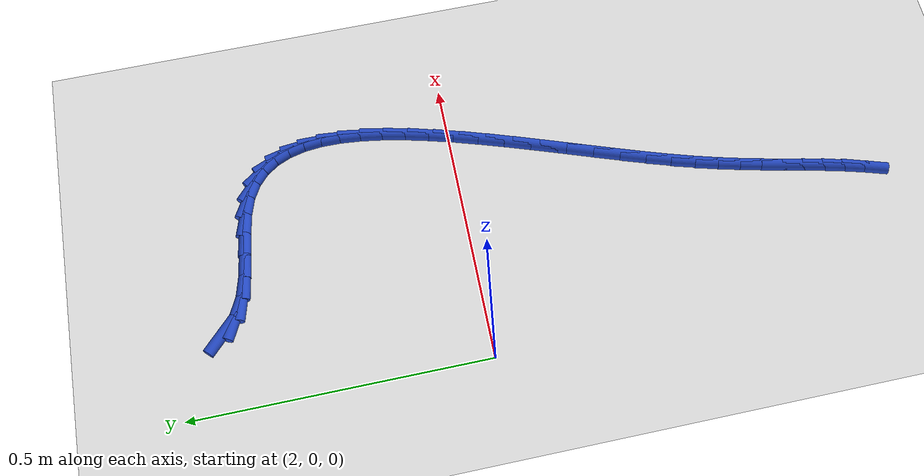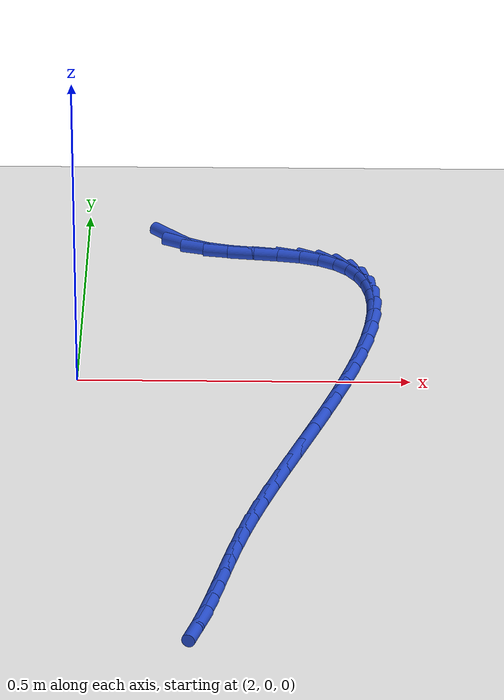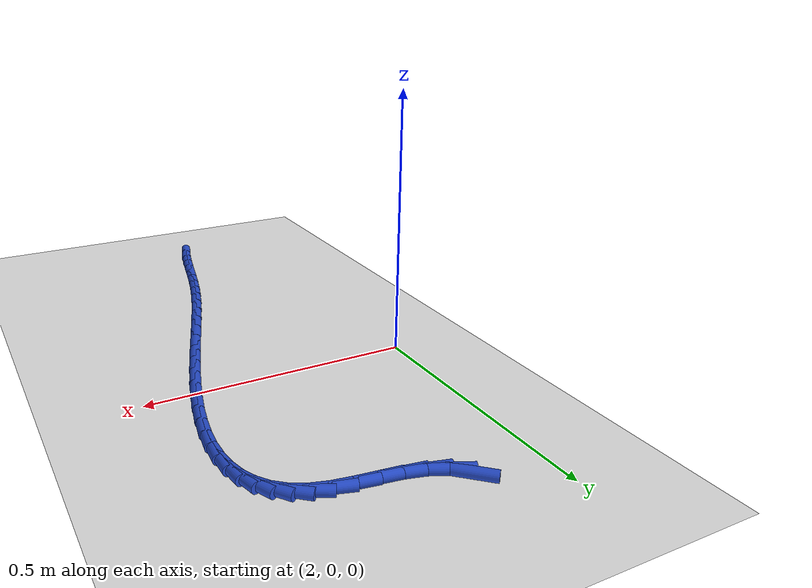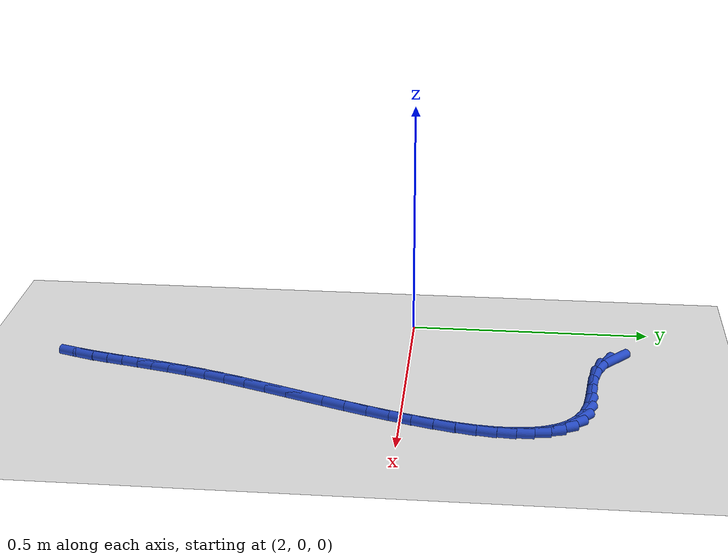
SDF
<sdf version="1.6">
 <world name="default">
  <model name="ground_plane">
   <static>1</static>
   <link name="link">
    <collision name="collision">
     <geometry><plane><normal>0 0 1</normal><size>100 100</size></plane></geometry>
     <surface><friction><ode><mu>100</mu><mu2>50</mu2></ode></friction></surface>
    </collision>
    <visual name="visual">
     <cast_shadows>0</cast_shadows>
     <geometry><plane><normal>0 0 1</normal><size>100 100</size></plane></geometry>
     <material>
      <script><uri>file://media/materials/scripts/gazebo.material</uri><name>Gazebo/WhiteGlow</name></script>
     </material>
    </visual>
   </link>
  </model>
  <model name="line">
   <link name="link_90">
    <pose>2.1305636055620076 0.42288128107191014 0.01 0 1.57 -0.7567599233735361</pose>
    <collision name="collision">
     <geometry><cylinder><radius>0.01</radius><length>0.08</length></cylinder></geometry>
    </collision>
    <visual name="visual">
     <material>
      <script><name>Gazebo/Blue</name><uri>file://media/materials/scripts/gazebo.material</uri></script>
     </material>
     <geometry><cylinder><radius>0.01</radius><length>0.08</length></cylinder></geometry>
    </visual>
   </link>
   <link name="link_91">
    <pose>2.1542394479452 0.4005241038728059 0.01 0 1.57 -0.4426309344426976</pose>
    <collision name="collision">
     <geometry><cylinder><radius>0.01</radius><length>0.08</length></cylinder></geometry>
    </collision>
    <visual name="visual">
     <material>
      <script><name>Gazebo/Blue</name><uri>file://media/materials/scripts/gazebo.material</uri></script>
     </material>
     <geometry><cylinder><radius>0.01</radius><length>0.08</length></cylinder></geometry>
    </visual>
   </link>
   <link name="link_92">
    <pose>2.184852789411084 0.38601342409188905 0.01 0 1.57 -0.24406776833048593</pose>
    <collision name="collision">
     <geometry><cylinder><radius>0.01</radius><length>0.08</length></cylinder></geometry>
    </collision>
    <visual name="visual">
     <material>
      <script><name>Gazebo/Blue</name><uri>file://media/materials/scripts/gazebo.material</uri></script>
     </material>
     <geometry><cylinder><radius>0.01</radius><length>0.08</length></cylinder></geometry>
    </visual>
   </link>
   <link name="link_93">
    <pose>2.2202088412823087 0.37720862183935344 0.01 0 1.57 -0.14280089788089562</pose>
    <collision name="collision">
     <geometry><cylinder><radius>0.01</radius><length>0.08</length></cylinder></geometry>
    </collision>
    <visual name="visual">
     <material>
      <script><name>Gazebo/Blue</name><uri>file://media/materials/scripts/gazebo.material</uri></script>
     </material>
     <geometry><cylinder><radius>0.01</radius><length>0.08</length></cylinder></geometry>
    </visual>
   </link>
   <link name="link_94">
    <pose>2.257936519876932 0.3717841531406344 0.01 0 1.57 -0.11530615651037719</pose>
    <collision name="collision">
     <geometry><cylinder><radius>0.01</radius><length>0.08</length></cylinder></geometry>
    </collision>
    <visual name="visual">
     <material>
      <script><name>Gazebo/Blue</name><uri>file://media/materials/scripts/gazebo.material</uri></script>
     </material>
     <geometry><cylinder><radius>0.01</radius><length>0.08</length></cylinder></geometry>
    </visual>
   </link>
   <link name="link_95">
    <pose>2.2956647415130105 0.36741447402116684 0.01 0 1.57 -0.15819206931085225</pose>
    <collision name="collision">
     <geometry><cylinder><radius>0.01</radius><length>0.08</length></cylinder></geometry>
    </collision>
    <visual name="visual">
     <material>
      <script><name>Gazebo/Blue</name><uri>file://media/materials/scripts/gazebo.material</uri></script>
     </material>
     <geometry><cylinder><radius>0.01</radius><length>0.08</length></cylinder></geometry>
    </visual>
   </link>
   <link name="link_96">
    <pose>2.3310224225085987 0.361774040506386 0.01 0 1.57 -0.28894721813249935</pose>
    <collision name="collision">
     <geometry><cylinder><radius>0.01</radius><length>0.08</length></cylinder></geometry>
    </collision>
    <visual name="visual">
     <material>
      <script><name>Gazebo/Blue</name><uri>file://media/materials/scripts/gazebo.material</uri></script>
     </material>
     <geometry><cylinder><radius>0.01</radius><length>0.08</length></cylinder></geometry>
    </visual>
   </link>
   <link name="link_97">
    <pose>2.361746143969743 0.3526409038600702 0.01 0 1.57 -0.48733417918766403</pose>
    <collision name="collision">
     <geometry><cylinder><radius>0.01</radius><length>0.08</length></cylinder></geometry>
    </collision>
    <visual name="visual">
     <material>
      <script><name>Gazebo/Blue</name><uri>file://media/materials/scripts/gazebo.material</uri></script>
     </material>
     <geometry><cylinder><radius>0.01</radius><length>0.08</length></cylinder></geometry>
    </visual>
   </link>
   <link name="link_98">
    <pose>2.3870606356461144 0.339225014449768 0.01 0 1.57 -0.7119260344662285</pose>
    <collision name="collision">
     <geometry><cylinder><radius>0.01</radius><length>0.08</length></cylinder></geometry>
    </collision>
    <visual name="visual">
     <material>
      <script><name>Gazebo/Blue</name><uri>file://media/materials/scripts/gazebo.material</uri></script>
     </material>
     <geometry><cylinder><radius>0.01</radius><length>0.08</length></cylinder></geometry>
    </visual>
   </link>
   <link name="link_99">
    <pose>2.4072764636870216 0.32178111623548 0.01 0 1.57 -0.9407965432231287</pose>
    <collision name="collision">
     <geometry><cylinder><radius>0.01</radius><length>0.08</length></cylinder></geometry>
    </collision>
    <visual name="visual">
     <material>
      <script><name>Gazebo/Blue</name><uri>file://media/materials/scripts/gazebo.material</uri></script>
     </material>
     <geometry><cylinder><radius>0.01</radius><length>0.08</length></cylinder></geometry>
    </visual>
   </link>
   <link name="link_100">
    <pose>2.42272888254655 0.30058770830518927 0.01 0 1.57 -1.150464703091256</pose>
    <collision name="collision">
     <geometry><cylinder><radius>0.01</radius><length>0.08</length></cylinder></geometry>
    </collision>
    <visual name="visual">
     <material>
      <script><name>Gazebo/Blue</name><uri>file://media/materials/scripts/gazebo.material</uri></script>
     </material>
     <geometry><cylinder><radius>0.01</radius><length>0.08</length></cylinder></geometry>
    </visual>
   </link>
   <link name="link_101">
    <pose>2.433753146678786 0.2759232897468798 0.01 0 1.57 -1.3269284749671724</pose>
    <collision name="collision">
     <geometry><cylinder><radius>0.01</radius><length>0.08</length></cylinder></geometry>
    </collision>
    <visual name="visual">
     <material>
      <script><name>Gazebo/Blue</name><uri>file://media/materials/scripts/gazebo.material</uri></script>
     </material>
     <geometry><cylinder><radius>0.01</radius><length>0.08</length></cylinder></geometry>
    </visual>
   </link>
   <link name="link_102">
    <pose>2.4406845105378174 0.24806635964853438 0.01 0 1.57 -1.4680196423709888</pose>
    <collision name="collision">
     <geometry><cylinder><radius>0.01</radius><length>0.08</length></cylinder></geometry>
    </collision>
    <visual name="visual">
     <material>
      <script><name>Gazebo/Blue</name><uri>file://media/materials/scripts/gazebo.material</uri></script>
     </material>
     <geometry><cylinder><radius>0.01</radius><length>0.08</length></cylinder></geometry>
    </visual>
   </link>
   <link name="link_103">
    <pose>2.44385822857773 0.21729541709813743 0.01 0 1.57 1.5633525939783555</pose>
    <collision name="collision">
     <geometry><cylinder><radius>0.01</radius><length>0.08</length></cylinder></geometry>
    </collision>
    <visual name="visual">
     <material>
      <script><name>Gazebo/Blue</name><uri>file://media/materials/scripts/gazebo.material</uri></script>
     </material>
     <geometry><cylinder><radius>0.01</radius><length>0.08</length></cylinder></geometry>
    </visual>
   </link>
   <link name="link_104">
    <pose>2.443609555252612 0.1838889611836716 0.01 0 1.57 1.4777911887668989</pose>
    <collision name="collision">
     <geometry><cylinder><radius>0.01</radius><length>0.08</length></cylinder></geometry>
    </collision>
    <visual name="visual">
     <material>
      <script><name>Gazebo/Blue</name><uri>file://media/materials/scripts/gazebo.material</uri></script>
     </material>
     <geometry><cylinder><radius>0.01</radius><length>0.08</length></cylinder></geometry>
    </visual>
   </link>
   <link name="link_105">
    <pose>2.4402737450165493 0.14812549099312133 0.01 0 1.57 1.4112915435183782</pose>
    <collision name="collision">
     <geometry><cylinder><radius>0.01</radius><length>0.08</length></cylinder></geometry>
    </collision>
    <visual name="visual">
     <material>
      <script><name>Gazebo/Blue</name><uri>file://media/materials/scripts/gazebo.material</uri></script>
     </material>
     <geometry><cylinder><radius>0.01</radius><length>0.08</length></cylinder></geometry>
    </visual>
   </link>
   <link name="link_106">
    <pose>2.434186052323628 0.1102835056144692 0.01 0 1.57 1.3594713224725974</pose>
    <collision name="collision">
     <geometry><cylinder><radius>0.01</radius><length>0.08</length></cylinder></geometry>
    </collision>
    <visual name="visual">
     <material>
      <script><name>Gazebo/Blue</name><uri>file://media/materials/scripts/gazebo.material</uri></script>
     </material>
     <geometry><cylinder><radius>0.01</radius><length>0.08</length></cylinder></geometry>
    </visual>
   </link>
   <link name="link_107">
    <pose>2.425681731627936 0.07064150413569968 0.01 0 1.57 1.3190883652998113</pose>
    <collision name="collision">
     <geometry><cylinder><radius>0.01</radius><length>0.08</length></cylinder></geometry>
    </collision>
    <visual name="visual">
     <material>
      <script><name>Gazebo/Blue</name><uri>file://media/materials/scripts/gazebo.material</uri></script>
     </material>
     <geometry><cylinder><radius>0.01</radius><length>0.08</length></cylinder></geometry>
    </visual>
   </link>
   <link name="link_108">
    <pose>2.415096037383559 0.029477985644795292 0.01 0 1.57 1.287801285523651</pose>
    <collision name="collision">
     <geometry><cylinder><radius>0.01</radius><length>0.08</length></cylinder></geometry>
    </collision>
    <visual name="visual">
     <material>
      <script><name>Gazebo/Blue</name><uri>file://media/materials/scripts/gazebo.material</uri></script>
     </material>
     <geometry><cylinder><radius>0.01</radius><length>0.08</length></cylinder></geometry>
    </visual>
   </link>
   <link name="link_109">
    <pose>2.4027642240445855 -0.012928550770259326 0.01 0 1.57 1.2639416761813658</pose>
    <collision name="collision">
     <geometry><cylinder><radius>0.01</radius><length>0.08</length></cylinder></geometry>
    </collision>
    <visual name="visual">
     <material>
      <script><name>Gazebo/Blue</name><uri>file://media/materials/scripts/gazebo.material</uri></script>
     </material>
     <geometry><cylinder><radius>0.01</radius><length>0.08</length></cylinder></geometry>
    </visual>
   </link>
   <link name="link_110">
    <pose>2.3890215460651003 -0.05629960602148176 0.01 0 1.57 1.2463395349350734</pose>
    <collision name="collision">
     <geometry><cylinder><radius>0.01</radius><length>0.08</length></cylinder></geometry>
    </collision>
    <visual name="visual">
     <material>
      <script><name>Gazebo/Blue</name><uri>file://media/materials/scripts/gazebo.material</uri></script>
     </material>
     <geometry><cylinder><radius>0.01</radius><length>0.08</length></cylinder></geometry>
    </visual>
   </link>
   <link name="link_111">
    <pose>2.374203257899192 -0.10035668102088739 0.01 0 1.57 1.2342009418500361</pose>
    <collision name="collision">
     <geometry><cylinder><radius>0.01</radius><length>0.08</length></cylinder></geometry>
    </collision>
    <visual name="visual">
     <material>
      <script><name>Gazebo/Blue</name><uri>file://media/materials/scripts/gazebo.material</uri></script>
     </material>
     <geometry><cylinder><radius>0.01</radius><length>0.08</length></cylinder></geometry>
    </visual>
   </link>
   <link name="link_112">
    <pose>2.358644614000945 -0.14482127668049327 0.01 0 1.57 1.2270277132510476</pose>
    <collision name="collision">
     <geometry><cylinder><radius>0.01</radius><length>0.08</length></cylinder></geometry>
    </collision>
    <visual name="visual">
     <material>
      <script><name>Gazebo/Blue</name><uri>file://media/materials/scripts/gazebo.material</uri></script>
     </material>
     <geometry><cylinder><radius>0.01</radius><length>0.08</length></cylinder></geometry>
    </visual>
   </link>
   <link name="link_113">
    <pose>2.3426808688244485 -0.18941489391231575 0.01 0 1.57 1.224569614670329</pose>
    <collision name="collision">
     <geometry><cylinder><radius>0.01</radius><length>0.08</length></cylinder></geometry>
    </collision>
    <visual name="visual">
     <material>
      <script><name>Gazebo/Blue</name><uri>file://media/materials/scripts/gazebo.material</uri></script>
     </material>
     <geometry><cylinder><radius>0.01</radius><length>0.08</length></cylinder></geometry>
    </visual>
   </link>
   <link name="link_114">
    <pose>2.3266472768237882 -0.23385903362837265 0.01 0 1.57 1.2268030334648492</pose>
    <collision name="collision">
     <geometry><cylinder><radius>0.01</radius><length>0.08</length></cylinder></geometry>
    </collision>
    <visual name="visual">
     <material>
      <script><name>Gazebo/Blue</name><uri>file://media/materials/scripts/gazebo.material</uri></script>
     </material>
     <geometry><cylinder><radius>0.01</radius><length>0.08</length></cylinder></geometry>
    </visual>
   </link>
   <link name="link_115">
    <pose>2.3108790924530505 -0.2778751967406779 0.01 0 1.57 1.2339336833661672</pose>
    <collision name="collision">
     <geometry><cylinder><radius>0.01</radius><length>0.08</length></cylinder></geometry>
    </collision>
    <visual name="visual">
     <material>
      <script><name>Gazebo/Blue</name><uri>file://media/materials/scripts/gazebo.material</uri></script>
     </material>
     <geometry><cylinder><radius>0.01</radius><length>0.08</length></cylinder></geometry>
    </visual>
   </link>
   <link name="link_116">
    <pose>2.2957115701663238 -0.32118488416124946 0.01 0 1.57 1.2464247475878791</pose>
    <collision name="collision">
     <geometry><cylinder><radius>0.01</radius><length>0.08</length></cylinder></geometry>
    </collision>
    <visual name="visual">
     <material>
      <script><name>Gazebo/Blue</name><uri>file://media/materials/scripts/gazebo.material</uri></script>
     </material>
     <geometry><cylinder><radius>0.01</radius><length>0.08</length></cylinder></geometry>
    </visual>
   </link>
   <link name="link_117">
    <pose>2.281479964417692 -0.3635095968021035 0.01 0 1.57 1.2650563627613982</pose>
    <collision name="collision">
     <geometry><cylinder><radius>0.01</radius><length>0.08</length></cylinder></geometry>
    </collision>
    <visual name="visual">
     <material>
      <script><name>Gazebo/Blue</name><uri>file://media/materials/scripts/gazebo.material</uri></script>
     </material>
     <geometry><cylinder><radius>0.01</radius><length>0.08</length></cylinder></geometry>
    </visual>
   </link>
   <link name="link_118">
    <pose>2.268519529661244 -0.4045708355752575 0.01 0 1.57 1.2904685432811978</pose>
    <collision name="collision">
     <geometry><cylinder><radius>0.01</radius><length>0.08</length></cylinder></geometry>
    </collision>
    <visual name="visual">
     <material>
      <script><name>Gazebo/Blue</name><uri>file://media/materials/scripts/gazebo.material</uri></script>
     </material>
     <geometry><cylinder><radius>0.01</radius><length>0.08</length></cylinder></geometry>
    </visual>
   </link>
   <link name="link_119">
    <pose>2.257136272939228 -0.44410849151234427 0.01 0 1.57 1.3160561758038436</pose>
    <collision name="collision">
     <geometry><cylinder><radius>0.01</radius><length>0.08</length></cylinder></geometry>
    </collision>
    <visual name="visual">
     <material>
      <script><name>Gazebo/Blue</name><uri>file://media/materials/scripts/gazebo.material</uri></script>
     </material>
     <geometry><cylinder><radius>0.01</radius><length>0.08</length></cylinder></geometry>
    </visual>
   </link>
   <link name="link_120">
    <pose>2.2472404452832664 -0.4821112981892686 0.01 0 1.57 1.3355052199397783</pose>
    <collision name="collision">
     <geometry><cylinder><radius>0.01</radius><length>0.08</length></cylinder></geometry>
    </collision>
    <visual name="visual">
     <material>
      <script><name>Gazebo/Blue</name><uri>file://media/materials/scripts/gazebo.material</uri></script>
     </material>
     <geometry><cylinder><radius>0.01</radius><length>0.08</length></cylinder></geometry>
    </visual>
   </link>
   <link name="link_121">
    <pose>2.23845773263809 -0.5187469173556851 0.01 0 1.57 1.3474375356238246</pose>
    <collision name="collision">
     <geometry><cylinder><radius>0.01</radius><length>0.08</length></cylinder></geometry>
    </collision>
    <visual name="visual">
     <material>
      <script><name>Gazebo/Blue</name><uri>file://media/materials/scripts/gazebo.material</uri></script>
     </material>
     <geometry><cylinder><radius>0.01</radius><length>0.08</length></cylinder></geometry>
    </visual>
   </link>
   <link name="link_122">
    <pose>2.2304075729065405 -0.5541869393905015 0.01 0 1.57 1.3507387830210147</pose>
    <collision name="collision">
     <geometry><cylinder><radius>0.01</radius><length>0.08</length></cylinder></geometry>
    </collision>
    <visual name="visual">
     <material>
      <script><name>Gazebo/Blue</name><uri>file://media/materials/scripts/gazebo.material</uri></script>
     </material>
     <geometry><cylinder><radius>0.01</radius><length>0.08</length></cylinder></geometry>
    </visual>
   </link>
   <link name="link_123">
    <pose>2.222709403991461 -0.5886029546726224 0.01 0 1.57 1.3445266853775462</pose>
    <collision name="collision">
     <geometry><cylinder><radius>0.01</radius><length>0.08</length></cylinder></geometry>
    </collision>
    <visual name="visual">
     <material>
      <script><name>Gazebo/Blue</name><uri>file://media/materials/scripts/gazebo.material</uri></script>
     </material>
     <geometry><cylinder><radius>0.01</radius><length>0.08</length></cylinder></geometry>
    </visual>
   </link>
   <link name="link_124">
    <pose>2.2149826637956935 -0.6221665535809557 0.01 0 1.57 1.328246856219714</pose>
    <collision name="collision">
     <geometry><cylinder><radius>0.01</radius><length>0.08</length></cylinder></geometry>
    </collision>
    <visual name="visual">
     <material>
      <script><name>Gazebo/Blue</name><uri>file://media/materials/scripts/gazebo.material</uri></script>
     </material>
     <geometry><cylinder><radius>0.01</radius><length>0.08</length></cylinder></geometry>
    </visual>
   </link>
   <link name="link_125">
    <pose>2.2068467902220816 -0.6550493264944084 0.01 0 1.57 1.301774142436299</pose>
    <collision name="collision">
     <geometry><cylinder><radius>0.01</radius><length>0.08</length></cylinder></geometry>
    </collision>
    <visual name="visual">
     <material>
      <script><name>Gazebo/Blue</name><uri>file://media/materials/scripts/gazebo.material</uri></script>
     </material>
     <geometry><cylinder><radius>0.01</radius><length>0.08</length></cylinder></geometry>
    </visual>
   </link>
   <link name="link_126">
    <pose>2.1979212211734658 -0.6874228637918881 0.01 0 1.57 1.2655071340571626</pose>
    <collision name="collision">
     <geometry><cylinder><radius>0.01</radius><length>0.08</length></cylinder></geometry>
    </collision>
    <visual name="visual">
     <material>
      <script><name>Gazebo/Blue</name><uri>file://media/materials/scripts/gazebo.material</uri></script>
     </material>
     <geometry><cylinder><radius>0.01</radius><length>0.08</length></cylinder></geometry>
    </visual>
   </link>
  </model>
 </world>
</sdf>
